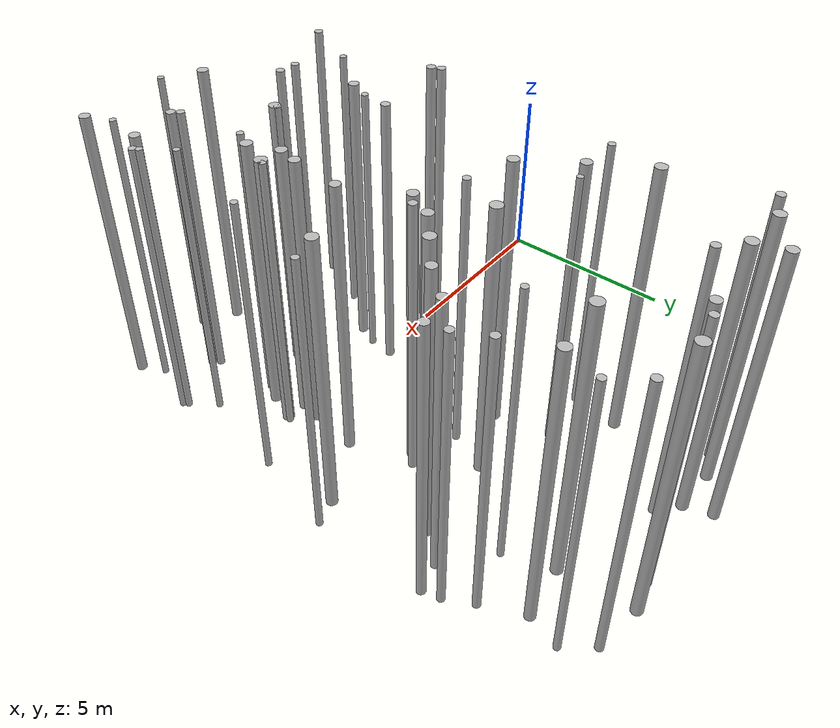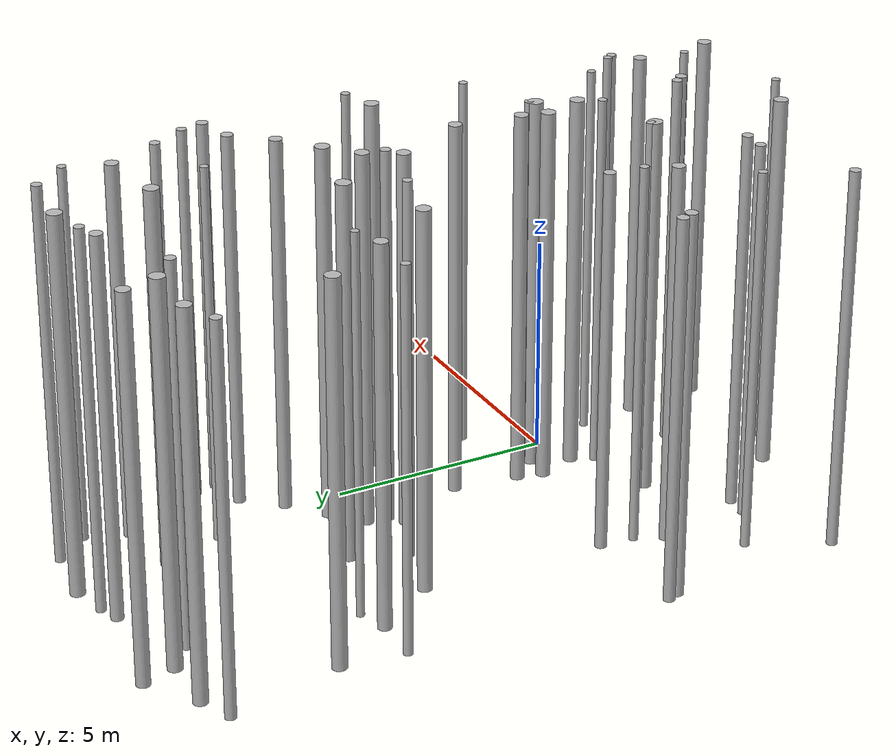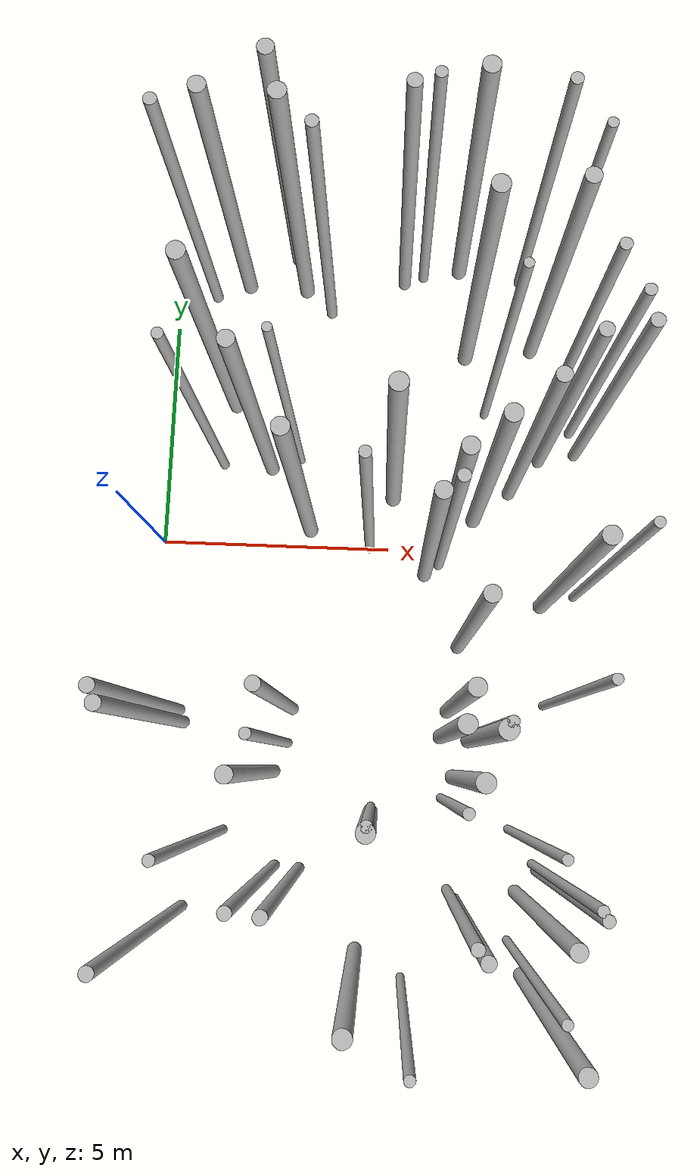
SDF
<sdf version="1.4">
 <world name="default">
  <model name="forest">
   <static>true</static>
   <link name="tree1">
    <pose>9.28742588503658 5.204263246902379 0 0 0 4.27737899151266</pose>
    <visual name="visual">
     <material>
      <script><uri>model://tree_simple/scripts</uri><uri>model://tree_simple/materials/textures</uri></script>
     </material>
     <geometry><cylinder><radius>0.130463049713648</radius><length>10</length></cylinder></geometry>
    </visual>
    <collision name="collision">
     <geometry><cylinder><radius>0.130463049713648</radius><length>10</length></cylinder></geometry>
     <max_contacts>0</max_contacts>
    </collision>
   </link>
   <link name="tree3">
    <pose>9.081236464839254 -7.250524742553647 0 0 0 4.406235192004525</pose>
    <visual name="visual">
     <material>
      <script><uri>model://tree_simple/scripts</uri><uri>model://tree_simple/materials/textures</uri></script>
     </material>
     <geometry><cylinder><radius>0.12073632900916591</radius><length>10</length></cylinder></geometry>
    </visual>
    <collision name="collision">
     <geometry><cylinder><radius>0.12073632900916591</radius><length>10</length></cylinder></geometry>
     <max_contacts>0</max_contacts>
    </collision>
   </link>
   <link name="tree4">
    <pose>2.565375309052067 3.277201835219314 0 0 0 3.1794822273653947</pose>
    <visual name="visual">
     <material>
      <script><uri>model://tree_simple/scripts</uri><uri>model://tree_simple/materials/textures</uri></script>
     </material>
     <geometry><cylinder><radius>0.10265185168273862</radius><length>10</length></cylinder></geometry>
    </visual>
    <collision name="collision">
     <geometry><cylinder><radius>0.10265185168273862</radius><length>10</length></cylinder></geometry>
     <max_contacts>0</max_contacts>
    </collision>
   </link>
   <link name="tree5">
    <pose>8.159192499387782 2.578477518116191 0 0 0 6.0892182310887595</pose>
    <visual name="visual">
     <material>
      <script><uri>model://tree_simple/scripts</uri><uri>model://tree_simple/materials/textures</uri></script>
     </material>
     <geometry><cylinder><radius>0.1663442545746124</radius><length>10</length></cylinder></geometry>
    </visual>
    <collision name="collision">
     <geometry><cylinder><radius>0.1663442545746124</radius><length>10</length></cylinder></geometry>
     <max_contacts>0</max_contacts>
    </collision>
   </link>
   <link name="tree6">
    <pose>8.388286986692489 -8.988517387709244 0 0 0 0.8251904035005396</pose>
    <visual name="visual">
     <material>
      <script><uri>model://tree_simple/scripts</uri><uri>model://tree_simple/materials/textures</uri></script>
     </material>
     <geometry><cylinder><radius>0.10702600410339386</radius><length>10</length></cylinder></geometry>
    </visual>
    <collision name="collision">
     <geometry><cylinder><radius>0.10702600410339386</radius><length>10</length></cylinder></geometry>
     <max_contacts>0</max_contacts>
    </collision>
   </link>
   <link name="tree7">
    <pose>7.019522752372961 -8.039091893821368 0 0 0 4.840702001167772</pose>
    <visual name="visual">
     <material>
      <script><uri>model://tree_simple/scripts</uri><uri>model://tree_simple/materials/textures</uri></script>
     </material>
     <geometry><cylinder><radius>0.1465682352906524</radius><length>10</length></cylinder></geometry>
    </visual>
    <collision name="collision">
     <geometry><cylinder><radius>0.1465682352906524</radius><length>10</length></cylinder></geometry>
     <max_contacts>0</max_contacts>
    </collision>
   </link>
   <link name="tree9">
    <pose>9.196698210061754 -3.0531043174901518 0 0 0 4.552952900019691</pose>
    <visual name="visual">
     <material>
      <script><uri>model://tree_simple/scripts</uri><uri>model://tree_simple/materials/textures</uri></script>
     </material>
     <geometry><cylinder><radius>0.10994932489535095</radius><length>10</length></cylinder></geometry>
    </visual>
    <collision name="collision">
     <geometry><cylinder><radius>0.10994932489535095</radius><length>10</length></cylinder></geometry>
     <max_contacts>0</max_contacts>
    </collision>
   </link>
   <link name="tree10">
    <pose>2.6830037699211786 -3.3944504051168067 0 0 0 3.08933881124032</pose>
    <visual name="visual">
     <material>
      <script><uri>model://tree_simple/scripts</uri><uri>model://tree_simple/materials/textures</uri></script>
     </material>
     <geometry><cylinder><radius>0.1509636146721227</radius><length>10</length></cylinder></geometry>
    </visual>
    <collision name="collision">
     <geometry><cylinder><radius>0.1509636146721227</radius><length>10</length></cylinder></geometry>
     <max_contacts>0</max_contacts>
    </collision>
   </link>
   <link name="tree12">
    <pose>2.4913489128003192 8.090060600771146 0 0 0 0.21846389376723882</pose>
    <visual name="visual">
     <material>
      <script><uri>model://tree_simple/scripts</uri><uri>model://tree_simple/materials/textures</uri></script>
     </material>
     <geometry><cylinder><radius>0.19399749765897004</radius><length>10</length></cylinder></geometry>
    </visual>
    <collision name="collision">
     <geometry><cylinder><radius>0.19399749765897004</radius><length>10</length></cylinder></geometry>
     <max_contacts>0</max_contacts>
    </collision>
   </link>
   <link name="tree13">
    <pose>-0.13744095611526497 -3.8495741143626088 0 0 0 1.7592963643268054</pose>
    <visual name="visual">
     <material>
      <script><uri>model://tree_simple/scripts</uri><uri>model://tree_simple/materials/textures</uri></script>
     </material>
     <geometry><cylinder><radius>0.15532485249751252</radius><length>10</length></cylinder></geometry>
    </visual>
    <collision name="collision">
     <geometry><cylinder><radius>0.15532485249751252</radius><length>10</length></cylinder></geometry>
     <max_contacts>0</max_contacts>
    </collision>
   </link>
   <link name="tree14">
    <pose>1.048064155052293 -6.545118863791619 0 0 0 4.770550317520441</pose>
    <visual name="visual">
     <material>
      <script><uri>model://tree_simple/scripts</uri><uri>model://tree_simple/materials/textures</uri></script>
     </material>
     <geometry><cylinder><radius>0.11639332592300089</radius><length>10</length></cylinder></geometry>
    </visual>
    <collision name="collision">
     <geometry><cylinder><radius>0.11639332592300089</radius><length>10</length></cylinder></geometry>
     <max_contacts>0</max_contacts>
    </collision>
   </link>
   <link name="tree15">
    <pose>4.816526967987553 -5.814044788896499 0 0 0 3.891070286945079</pose>
    <visual name="visual">
     <material>
      <script><uri>model://tree_simple/scripts</uri><uri>model://tree_simple/materials/textures</uri></script>
     </material>
     <geometry><cylinder><radius>0.11758240183343739</radius><length>10</length></cylinder></geometry>
    </visual>
    <collision name="collision">
     <geometry><cylinder><radius>0.11758240183343739</radius><length>10</length></cylinder></geometry>
     <max_contacts>0</max_contacts>
    </collision>
   </link>
   <link name="tree16">
    <pose>4.55468158409186 -9.371034672131476 0 0 0 4.308863873754925</pose>
    <visual name="visual">
     <material>
      <script><uri>model://tree_simple/scripts</uri><uri>model://tree_simple/materials/textures</uri></script>
     </material>
     <geometry><cylinder><radius>0.18246585967234058</radius><length>10</length></cylinder></geometry>
    </visual>
    <collision name="collision">
     <geometry><cylinder><radius>0.18246585967234058</radius><length>10</length></cylinder></geometry>
     <max_contacts>0</max_contacts>
    </collision>
   </link>
   <link name="tree18">
    <pose>8.98285268691668 -7.08425403118611 0 0 0 1.4025231054887284</pose>
    <visual name="visual">
     <material>
      <script><uri>model://tree_simple/scripts</uri><uri>model://tree_simple/materials/textures</uri></script>
     </material>
     <geometry><cylinder><radius>0.11015111212616524</radius><length>10</length></cylinder></geometry>
    </visual>
    <collision name="collision">
     <geometry><cylinder><radius>0.11015111212616524</radius><length>10</length></cylinder></geometry>
     <max_contacts>0</max_contacts>
    </collision>
   </link>
   <link name="tree19">
    <pose>7.355195323431374 -3.8804685065380813 0 0 0 3.122418577142855</pose>
    <visual name="visual">
     <material>
      <script><uri>model://tree_simple/scripts</uri><uri>model://tree_simple/materials/textures</uri></script>
     </material>
     <geometry><cylinder><radius>0.11579509823947026</radius><length>10</length></cylinder></geometry>
    </visual>
    <collision name="collision">
     <geometry><cylinder><radius>0.11579509823947026</radius><length>10</length></cylinder></geometry>
     <max_contacts>0</max_contacts>
    </collision>
   </link>
   <link name="tree20">
    <pose>9.017129318988655 7.678242347444009 0 0 0 5.705892795227199</pose>
    <visual name="visual">
     <material>
      <script><uri>model://tree_simple/scripts</uri><uri>model://tree_simple/materials/textures</uri></script>
     </material>
     <geometry><cylinder><radius>0.11379000510274896</radius><length>10</length></cylinder></geometry>
    </visual>
    <collision name="collision">
     <geometry><cylinder><radius>0.11379000510274896</radius><length>10</length></cylinder></geometry>
     <max_contacts>0</max_contacts>
    </collision>
   </link>
   <link name="tree24">
    <pose>0.5219401986907997 3.069971703521933 0 0 0 2.720388063213229</pose>
    <visual name="visual">
     <material>
      <script><uri>model://tree_simple/scripts</uri><uri>model://tree_simple/materials/textures</uri></script>
     </material>
     <geometry><cylinder><radius>0.11857254172634711</radius><length>10</length></cylinder></geometry>
    </visual>
    <collision name="collision">
     <geometry><cylinder><radius>0.11857254172634711</radius><length>10</length></cylinder></geometry>
     <max_contacts>0</max_contacts>
    </collision>
   </link>
   <link name="tree28">
    <pose>8.353597907686332 -6.238156691846037 0 0 0 0.44095148787478994</pose>
    <visual name="visual">
     <material>
      <script><uri>model://tree_simple/scripts</uri><uri>model://tree_simple/materials/textures</uri></script>
     </material>
     <geometry><cylinder><radius>0.10642238945894442</radius><length>10</length></cylinder></geometry>
    </visual>
    <collision name="collision">
     <geometry><cylinder><radius>0.10642238945894442</radius><length>10</length></cylinder></geometry>
     <max_contacts>0</max_contacts>
    </collision>
   </link>
   <link name="tree30">
    <pose>5.98358000604598 0.28204434981173776 0 0 0 5.880755317785308</pose>
    <visual name="visual">
     <material>
      <script><uri>model://tree_simple/scripts</uri><uri>model://tree_simple/materials/textures</uri></script>
     </material>
     <geometry><cylinder><radius>0.17782784012767053</radius><length>10</length></cylinder></geometry>
    </visual>
    <collision name="collision">
     <geometry><cylinder><radius>0.17782784012767053</radius><length>10</length></cylinder></geometry>
     <max_contacts>0</max_contacts>
    </collision>
   </link>
   <link name="tree33">
    <pose>5.160939020824324 8.405895778192733 0 0 0 5.929421103308884</pose>
    <visual name="visual">
     <material>
      <script><uri>model://tree_simple/scripts</uri><uri>model://tree_simple/materials/textures</uri></script>
     </material>
     <geometry><cylinder><radius>0.16253436089065543</radius><length>10</length></cylinder></geometry>
    </visual>
    <collision name="collision">
     <geometry><cylinder><radius>0.16253436089065543</radius><length>10</length></cylinder></geometry>
     <max_contacts>0</max_contacts>
    </collision>
   </link>
   <link name="tree36">
    <pose>2.2186336135805114 9.0019567679497 0 0 0 0.716508456384257</pose>
    <visual name="visual">
     <material>
      <script><uri>model://tree_simple/scripts</uri><uri>model://tree_simple/materials/textures</uri></script>
     </material>
     <geometry><cylinder><radius>0.1778516227466359</radius><length>10</length></cylinder></geometry>
    </visual>
    <collision name="collision">
     <geometry><cylinder><radius>0.1778516227466359</radius><length>10</length></cylinder></geometry>
     <max_contacts>0</max_contacts>
    </collision>
   </link>
   <link name="tree38">
    <pose>9.758034906152801 4.310037994045759 0 0 0 4.487976949407067</pose>
    <visual name="visual">
     <material>
      <script><uri>model://tree_simple/scripts</uri><uri>model://tree_simple/materials/textures</uri></script>
     </material>
     <geometry><cylinder><radius>0.126762201480961</radius><length>10</length></cylinder></geometry>
    </visual>
    <collision name="collision">
     <geometry><cylinder><radius>0.126762201480961</radius><length>10</length></cylinder></geometry>
     <max_contacts>0</max_contacts>
    </collision>
   </link>
   <link name="tree39">
    <pose>2.4202743763242367 -7.380907128787775 0 0 0 5.785199400767018</pose>
    <visual name="visual">
     <material>
      <script><uri>model://tree_simple/scripts</uri><uri>model://tree_simple/materials/textures</uri></script>
     </material>
     <geometry><cylinder><radius>0.1335715978219707</radius><length>10</length></cylinder></geometry>
    </visual>
    <collision name="collision">
     <geometry><cylinder><radius>0.1335715978219707</radius><length>10</length></cylinder></geometry>
     <max_contacts>0</max_contacts>
    </collision>
   </link>
   <link name="tree44">
    <pose>7.231747757611391 1.8024618045293401 0 0 0 2.2371530574232548</pose>
    <visual name="visual">
     <material>
      <script><uri>model://tree_simple/scripts</uri><uri>model://tree_simple/materials/textures</uri></script>
     </material>
     <geometry><cylinder><radius>0.18895777274713396</radius><length>10</length></cylinder></geometry>
    </visual>
    <collision name="collision">
     <geometry><cylinder><radius>0.18895777274713396</radius><length>10</length></cylinder></geometry>
     <max_contacts>0</max_contacts>
    </collision>
   </link>
   <link name="tree45">
    <pose>6.649973601659784 8.803911118315717 0 0 0 2.711818076899215</pose>
    <visual name="visual">
     <material>
      <script><uri>model://tree_simple/scripts</uri><uri>model://tree_simple/materials/textures</uri></script>
     </material>
     <geometry><cylinder><radius>0.19240625988839088</radius><length>10</length></cylinder></geometry>
    </visual>
    <collision name="collision">
     <geometry><cylinder><radius>0.19240625988839088</radius><length>10</length></cylinder></geometry>
     <max_contacts>0</max_contacts>
    </collision>
   </link>
   <link name="tree47">
    <pose>4.511283908960127 0.9459156185539008 0 0 0 2.6574427894181607</pose>
    <visual name="visual">
     <material>
      <script><uri>model://tree_simple/scripts</uri><uri>model://tree_simple/materials/textures</uri></script>
     </material>
     <geometry><cylinder><radius>0.1247388592391212</radius><length>10</length></cylinder></geometry>
    </visual>
    <collision name="collision">
     <geometry><cylinder><radius>0.1247388592391212</radius><length>10</length></cylinder></geometry>
     <max_contacts>0</max_contacts>
    </collision>
   </link>
   <link name="tree48">
    <pose>3.2019206238151003 7.47477744350341 0 0 0 5.556931000979392</pose>
    <visual name="visual">
     <material>
      <script><uri>model://tree_simple/scripts</uri><uri>model://tree_simple/materials/textures</uri></script>
     </material>
     <geometry><cylinder><radius>0.14028482641056897</radius><length>10</length></cylinder></geometry>
    </visual>
    <collision name="collision">
     <geometry><cylinder><radius>0.14028482641056897</radius><length>10</length></cylinder></geometry>
     <max_contacts>0</max_contacts>
    </collision>
   </link>
   <link name="tree50">
    <pose>1.806821988030789 3.0189592851814258 0 0 0 1.7531961965566407</pose>
    <visual name="visual">
     <material>
      <script><uri>model://tree_simple/scripts</uri><uri>model://tree_simple/materials/textures</uri></script>
     </material>
     <geometry><cylinder><radius>0.18013737792017054</radius><length>10</length></cylinder></geometry>
    </visual>
    <collision name="collision">
     <geometry><cylinder><radius>0.18013737792017054</radius><length>10</length></cylinder></geometry>
     <max_contacts>0</max_contacts>
    </collision>
   </link>
   <link name="tree51">
    <pose>6.894403162068741 -4.978412471199968 0 0 0 0.8258604710726472</pose>
    <visual name="visual">
     <material>
      <script><uri>model://tree_simple/scripts</uri><uri>model://tree_simple/materials/textures</uri></script>
     </material>
     <geometry><cylinder><radius>0.1881193218910705</radius><length>10</length></cylinder></geometry>
    </visual>
    <collision name="collision">
     <geometry><cylinder><radius>0.1881193218910705</radius><length>10</length></cylinder></geometry>
     <max_contacts>0</max_contacts>
    </collision>
   </link>
   <link name="tree57">
    <pose>7.451964165733433 4.74920043762765 0 0 0 4.679413400432869</pose>
    <visual name="visual">
     <material>
      <script><uri>model://tree_simple/scripts</uri><uri>model://tree_simple/materials/textures</uri></script>
     </material>
     <geometry><cylinder><radius>0.10903205690920936</radius><length>10</length></cylinder></geometry>
    </visual>
    <collision name="collision">
     <geometry><cylinder><radius>0.10903205690920936</radius><length>10</length></cylinder></geometry>
     <max_contacts>0</max_contacts>
    </collision>
   </link>
   <link name="tree60">
    <pose>2.598168699877073 -4.2807418243763085 0 0 0 3.6788408115660554</pose>
    <visual name="visual">
     <material>
      <script><uri>model://tree_simple/scripts</uri><uri>model://tree_simple/materials/textures</uri></script>
     </material>
     <geometry><cylinder><radius>0.11400913994983101</radius><length>10</length></cylinder></geometry>
    </visual>
    <collision name="collision">
     <geometry><cylinder><radius>0.11400913994983101</radius><length>10</length></cylinder></geometry>
     <max_contacts>0</max_contacts>
    </collision>
   </link>
   <link name="tree63">
    <pose>0.749986198531909 4.728562078998337 0 0 0 2.55974544430983</pose>
    <visual name="visual">
     <material>
      <script><uri>model://tree_simple/scripts</uri><uri>model://tree_simple/materials/textures</uri></script>
     </material>
     <geometry><cylinder><radius>0.19279973695264743</radius><length>10</length></cylinder></geometry>
    </visual>
    <collision name="collision">
     <geometry><cylinder><radius>0.19279973695264743</radius><length>10</length></cylinder></geometry>
     <max_contacts>0</max_contacts>
    </collision>
   </link>
   <link name="tree64">
    <pose>2.2700939902576938 -5.013883692286754 0 0 0 4.66091903981315</pose>
    <visual name="visual">
     <material>
      <script><uri>model://tree_simple/scripts</uri><uri>model://tree_simple/materials/textures</uri></script>
     </material>
     <geometry><cylinder><radius>0.16722144620164117</radius><length>10</length></cylinder></geometry>
    </visual>
    <collision name="collision">
     <geometry><cylinder><radius>0.16722144620164117</radius><length>10</length></cylinder></geometry>
     <max_contacts>0</max_contacts>
    </collision>
   </link>
   <link name="tree65">
    <pose>6.6070573890297055 -5.52283593391431 0 0 0 5.080947361991473</pose>
    <visual name="visual">
     <material>
      <script><uri>model://tree_simple/scripts</uri><uri>model://tree_simple/materials/textures</uri></script>
     </material>
     <geometry><cylinder><radius>0.11314519169293531</radius><length>10</length></cylinder></geometry>
    </visual>
    <collision name="collision">
     <geometry><cylinder><radius>0.11314519169293531</radius><length>10</length></cylinder></geometry>
     <max_contacts>0</max_contacts>
    </collision>
   </link>
   <link name="tree66">
    <pose>6.889740421099489 6.3314998725574085 0 0 0 0.855628910263654</pose>
    <visual name="visual">
     <material>
      <script><uri>model://tree_simple/scripts</uri><uri>model://tree_simple/materials/textures</uri></script>
     </material>
     <geometry><cylinder><radius>0.19630614493049964</radius><length>10</length></cylinder></geometry>
    </visual>
    <collision name="collision">
     <geometry><cylinder><radius>0.19630614493049964</radius><length>10</length></cylinder></geometry>
     <max_contacts>0</max_contacts>
    </collision>
   </link>
   <link name="tree67">
    <pose>8.56736893192987 -7.78914152855844 0 0 0 3.147404449030027</pose>
    <visual name="visual">
     <material>
      <script><uri>model://tree_simple/scripts</uri><uri>model://tree_simple/materials/textures</uri></script>
     </material>
     <geometry><cylinder><radius>0.16726925962391123</radius><length>10</length></cylinder></geometry>
    </visual>
    <collision name="collision">
     <geometry><cylinder><radius>0.16726925962391123</radius><length>10</length></cylinder></geometry>
     <max_contacts>0</max_contacts>
    </collision>
   </link>
   <link name="tree68">
    <pose>2.9199339354712563 1.3675525544381468 0 0 0 2.014472684865401</pose>
    <visual name="visual">
     <material>
      <script><uri>model://tree_simple/scripts</uri><uri>model://tree_simple/materials/textures</uri></script>
     </material>
     <geometry><cylinder><radius>0.18853955438131045</radius><length>10</length></cylinder></geometry>
    </visual>
    <collision name="collision">
     <geometry><cylinder><radius>0.18853955438131045</radius><length>10</length></cylinder></geometry>
     <max_contacts>0</max_contacts>
    </collision>
   </link>
   <link name="tree69">
    <pose>9.897838266444356 3.7102949338046933 0 0 0 5.161460024757366</pose>
    <visual name="visual">
     <material>
      <script><uri>model://tree_simple/scripts</uri><uri>model://tree_simple/materials/textures</uri></script>
     </material>
     <geometry><cylinder><radius>0.14926462227699788</radius><length>10</length></cylinder></geometry>
    </visual>
    <collision name="collision">
     <geometry><cylinder><radius>0.14926462227699788</radius><length>10</length></cylinder></geometry>
     <max_contacts>0</max_contacts>
    </collision>
   </link>
   <link name="tree70">
    <pose>5.73061448394429 -9.999216090273361 0 0 0 1.8926956919483944</pose>
    <visual name="visual">
     <material>
      <script><uri>model://tree_simple/scripts</uri><uri>model://tree_simple/materials/textures</uri></script>
     </material>
     <geometry><cylinder><radius>0.10856465959766201</radius><length>10</length></cylinder></geometry>
    </visual>
    <collision name="collision">
     <geometry><cylinder><radius>0.10856465959766201</radius><length>10</length></cylinder></geometry>
     <max_contacts>0</max_contacts>
    </collision>
   </link>
   <link name="tree71">
    <pose>0.03977766345485456 7.811053716310681 0 0 0 1.2782472708319017</pose>
    <visual name="visual">
     <material>
      <script><uri>model://tree_simple/scripts</uri><uri>model://tree_simple/materials/textures</uri></script>
     </material>
     <geometry><cylinder><radius>0.14143622286496974</radius><length>10</length></cylinder></geometry>
    </visual>
    <collision name="collision">
     <geometry><cylinder><radius>0.14143622286496974</radius><length>10</length></cylinder></geometry>
     <max_contacts>0</max_contacts>
    </collision>
   </link>
   <link name="tree75">
    <pose>4.808174989520012 -5.93264496042546 0 0 0 3.6724076128154732</pose>
    <visual name="visual">
     <material>
      <script><uri>model://tree_simple/scripts</uri><uri>model://tree_simple/materials/textures</uri></script>
     </material>
     <geometry><cylinder><radius>0.18369638581836464</radius><length>10</length></cylinder></geometry>
    </visual>
    <collision name="collision">
     <geometry><cylinder><radius>0.18369638581836464</radius><length>10</length></cylinder></geometry>
     <max_contacts>0</max_contacts>
    </collision>
   </link>
   <link name="tree78">
    <pose>0.1135544795027208 -8.481973351543315 0 0 0 5.030008349324421</pose>
    <visual name="visual">
     <material>
      <script><uri>model://tree_simple/scripts</uri><uri>model://tree_simple/materials/textures</uri></script>
     </material>
     <geometry><cylinder><radius>0.1409598105036769</radius><length>10</length></cylinder></geometry>
    </visual>
    <collision name="collision">
     <geometry><cylinder><radius>0.1409598105036769</radius><length>10</length></cylinder></geometry>
     <max_contacts>0</max_contacts>
    </collision>
   </link>
   <link name="tree80">
    <pose>7.278151728726584 -4.022525492012001 0 0 0 3.6092234963356913</pose>
    <visual name="visual">
     <material>
      <script><uri>model://tree_simple/scripts</uri><uri>model://tree_simple/materials/textures</uri></script>
     </material>
     <geometry><cylinder><radius>0.19651029415504395</radius><length>10</length></cylinder></geometry>
    </visual>
    <collision name="collision">
     <geometry><cylinder><radius>0.19651029415504395</radius><length>10</length></cylinder></geometry>
     <max_contacts>0</max_contacts>
    </collision>
   </link>
   <link name="tree83">
    <pose>5.081183035140189 2.313242277165447 0 0 0 5.554041119074606</pose>
    <visual name="visual">
     <material>
      <script><uri>model://tree_simple/scripts</uri><uri>model://tree_simple/materials/textures</uri></script>
     </material>
     <geometry><cylinder><radius>0.19784493812018783</radius><length>10</length></cylinder></geometry>
    </visual>
    <collision name="collision">
     <geometry><cylinder><radius>0.19784493812018783</radius><length>10</length></cylinder></geometry>
     <max_contacts>0</max_contacts>
    </collision>
   </link>
   <link name="tree84">
    <pose>6.541983399697763 -3.9593656621525426 0 0 0 0.557299177270163</pose>
    <visual name="visual">
     <material>
      <script><uri>model://tree_simple/scripts</uri><uri>model://tree_simple/materials/textures</uri></script>
     </material>
     <geometry><cylinder><radius>0.1866691355370176</radius><length>10</length></cylinder></geometry>
    </visual>
    <collision name="collision">
     <geometry><cylinder><radius>0.1866691355370176</radius><length>10</length></cylinder></geometry>
     <max_contacts>0</max_contacts>
    </collision>
   </link>
   <link name="tree85">
    <pose>9.938845803942279 -0.1611615192911664 0 0 0 1.8874623902596888</pose>
    <visual name="visual">
     <material>
      <script><uri>model://tree_simple/scripts</uri><uri>model://tree_simple/materials/textures</uri></script>
     </material>
     <geometry><cylinder><radius>0.11176008853362523</radius><length>10</length></cylinder></geometry>
    </visual>
    <collision name="collision">
     <geometry><cylinder><radius>0.11176008853362523</radius><length>10</length></cylinder></geometry>
     <max_contacts>0</max_contacts>
    </collision>
   </link>
   <link name="tree86">
    <pose>6.35158141900483 0.5745431752985475 0 0 0 2.0369854484763565</pose>
    <visual name="visual">
     <material>
      <script><uri>model://tree_simple/scripts</uri><uri>model://tree_simple/materials/textures</uri></script>
     </material>
     <geometry><cylinder><radius>0.1345797661826168</radius><length>10</length></cylinder></geometry>
    </visual>
    <collision name="collision">
     <geometry><cylinder><radius>0.1345797661826168</radius><length>10</length></cylinder></geometry>
     <max_contacts>0</max_contacts>
    </collision>
   </link>
   <link name="tree87">
    <pose>8.751982285334254 -9.82161483128884 0 0 0 6.114160640974486</pose>
    <visual name="visual">
     <material>
      <script><uri>model://tree_simple/scripts</uri><uri>model://tree_simple/materials/textures</uri></script>
     </material>
     <geometry><cylinder><radius>0.17409032943884556</radius><length>10</length></cylinder></geometry>
    </visual>
    <collision name="collision">
     <geometry><cylinder><radius>0.17409032943884556</radius><length>10</length></cylinder></geometry>
     <max_contacts>0</max_contacts>
    </collision>
   </link>
   <link name="tree91">
    <pose>0.9264543236440641 8.149972723066284 0 0 0 5.564567416246612</pose>
    <visual name="visual">
     <material>
      <script><uri>model://tree_simple/scripts</uri><uri>model://tree_simple/materials/textures</uri></script>
     </material>
     <geometry><cylinder><radius>0.18757876884781563</radius><length>10</length></cylinder></geometry>
    </visual>
    <collision name="collision">
     <geometry><cylinder><radius>0.18757876884781563</radius><length>10</length></cylinder></geometry>
     <max_contacts>0</max_contacts>
    </collision>
   </link>
   <link name="tree93">
    <pose>-0.27118980956199756 -3.539774391550628 0 0 0 4.2866870462053095</pose>
    <visual name="visual">
     <material>
      <script><uri>model://tree_simple/scripts</uri><uri>model://tree_simple/materials/textures</uri></script>
     </material>
     <geometry><cylinder><radius>0.14759830818704167</radius><length>10</length></cylinder></geometry>
    </visual>
    <collision name="collision">
     <geometry><cylinder><radius>0.14759830818704167</radius><length>10</length></cylinder></geometry>
     <max_contacts>0</max_contacts>
    </collision>
   </link>
   <link name="tree94">
    <pose>9.071836288956984 -0.437671546717036 0 0 0 2.2867629504594107</pose>
    <visual name="visual">
     <material>
      <script><uri>model://tree_simple/scripts</uri><uri>model://tree_simple/materials/textures</uri></script>
     </material>
     <geometry><cylinder><radius>0.19012246052820536</radius><length>10</length></cylinder></geometry>
    </visual>
    <collision name="collision">
     <geometry><cylinder><radius>0.19012246052820536</radius><length>10</length></cylinder></geometry>
     <max_contacts>0</max_contacts>
    </collision>
   </link>
   <link name="tree95">
    <pose>6.456124305949114 1.1406957328302667 0 0 0 0.8561084502633842</pose>
    <visual name="visual">
     <material>
      <script><uri>model://tree_simple/scripts</uri><uri>model://tree_simple/materials/textures</uri></script>
     </material>
     <geometry><cylinder><radius>0.1809741099212016</radius><length>10</length></cylinder></geometry>
    </visual>
    <collision name="collision">
     <geometry><cylinder><radius>0.1809741099212016</radius><length>10</length></cylinder></geometry>
     <max_contacts>0</max_contacts>
    </collision>
   </link>
   <link name="tree97">
    <pose>8.656719123121043 6.5744192480553245 0 0 0 1.6818969419757972</pose>
    <visual name="visual">
     <material>
      <script><uri>model://tree_simple/scripts</uri><uri>model://tree_simple/materials/textures</uri></script>
     </material>
     <geometry><cylinder><radius>0.17566093454104056</radius><length>10</length></cylinder></geometry>
    </visual>
    <collision name="collision">
     <geometry><cylinder><radius>0.17566093454104056</radius><length>10</length></cylinder></geometry>
     <max_contacts>0</max_contacts>
    </collision>
   </link>
   <link name="tree104">
    <pose>3.0430143024321943 -7.426284914452069 0 0 0 5.48564984864758</pose>
    <visual name="visual">
     <material>
      <script><uri>model://tree_simple/scripts</uri><uri>model://tree_simple/materials/textures</uri></script>
     </material>
     <geometry><cylinder><radius>0.14079854808072217</radius><length>10</length></cylinder></geometry>
    </visual>
    <collision name="collision">
     <geometry><cylinder><radius>0.14079854808072217</radius><length>10</length></cylinder></geometry>
     <max_contacts>0</max_contacts>
    </collision>
   </link>
   <link name="tree106">
    <pose>5.673260992693027 8.6039639434639 0 0 0 6.174156530723828</pose>
    <visual name="visual">
     <material>
      <script><uri>model://tree_simple/scripts</uri><uri>model://tree_simple/materials/textures</uri></script>
     </material>
     <geometry><cylinder><radius>0.12896693444627563</radius><length>10</length></cylinder></geometry>
    </visual>
    <collision name="collision">
     <geometry><cylinder><radius>0.12896693444627563</radius><length>10</length></cylinder></geometry>
     <max_contacts>0</max_contacts>
    </collision>
   </link>
   <link name="tree107">
    <pose>8.93787220956202 3.489464910915018 0 0 0 0.6249926549670595</pose>
    <visual name="visual">
     <material>
      <script><uri>model://tree_simple/scripts</uri><uri>model://tree_simple/materials/textures</uri></script>
     </material>
     <geometry><cylinder><radius>0.15568856787492216</radius><length>10</length></cylinder></geometry>
    </visual>
    <collision name="collision">
     <geometry><cylinder><radius>0.15568856787492216</radius><length>10</length></cylinder></geometry>
     <max_contacts>0</max_contacts>
    </collision>
   </link>
   <link name="tree108">
    <pose>6.699057455405214 -3.297177210858857 0 0 0 3.4973549502940684</pose>
    <visual name="visual">
     <material>
      <script><uri>model://tree_simple/scripts</uri><uri>model://tree_simple/materials/textures</uri></script>
     </material>
     <geometry><cylinder><radius>0.18067240635819845</radius><length>10</length></cylinder></geometry>
    </visual>
    <collision name="collision">
     <geometry><cylinder><radius>0.18067240635819845</radius><length>10</length></cylinder></geometry>
     <max_contacts>0</max_contacts>
    </collision>
   </link>
   <link name="tree111">
    <pose>8.31310817523087 8.577093667766512 0 0 0 5.484100790172984</pose>
    <visual name="visual">
     <material>
      <script><uri>model://tree_simple/scripts</uri><uri>model://tree_simple/materials/textures</uri></script>
     </material>
     <geometry><cylinder><radius>0.13320092131449357</radius><length>10</length></cylinder></geometry>
    </visual>
    <collision name="collision">
     <geometry><cylinder><radius>0.13320092131449357</radius><length>10</length></cylinder></geometry>
     <max_contacts>0</max_contacts>
    </collision>
   </link>
   <link name="tree118">
    <pose>6.832036972929565 -7.813126287703039 0 0 0 4.0117510153048865</pose>
    <visual name="visual">
     <material>
      <script><uri>model://tree_simple/scripts</uri><uri>model://tree_simple/materials/textures</uri></script>
     </material>
     <geometry><cylinder><radius>0.12955734694785598</radius><length>10</length></cylinder></geometry>
    </visual>
    <collision name="collision">
     <geometry><cylinder><radius>0.12955734694785598</radius><length>10</length></cylinder></geometry>
     <max_contacts>0</max_contacts>
    </collision>
   </link>
   <link name="tree119">
    <pose>6.924646554815247 -1.6024885948742007 0 0 0 4.651747352881593</pose>
    <visual name="visual">
     <material>
      <script><uri>model://tree_simple/scripts</uri><uri>model://tree_simple/materials/textures</uri></script>
     </material>
     <geometry><cylinder><radius>0.17252472139601582</radius><length>10</length></cylinder></geometry>
    </visual>
    <collision name="collision">
     <geometry><cylinder><radius>0.17252472139601582</radius><length>10</length></cylinder></geometry>
     <max_contacts>0</max_contacts>
    </collision>
   </link>
  </model>
 </world>
</sdf>
